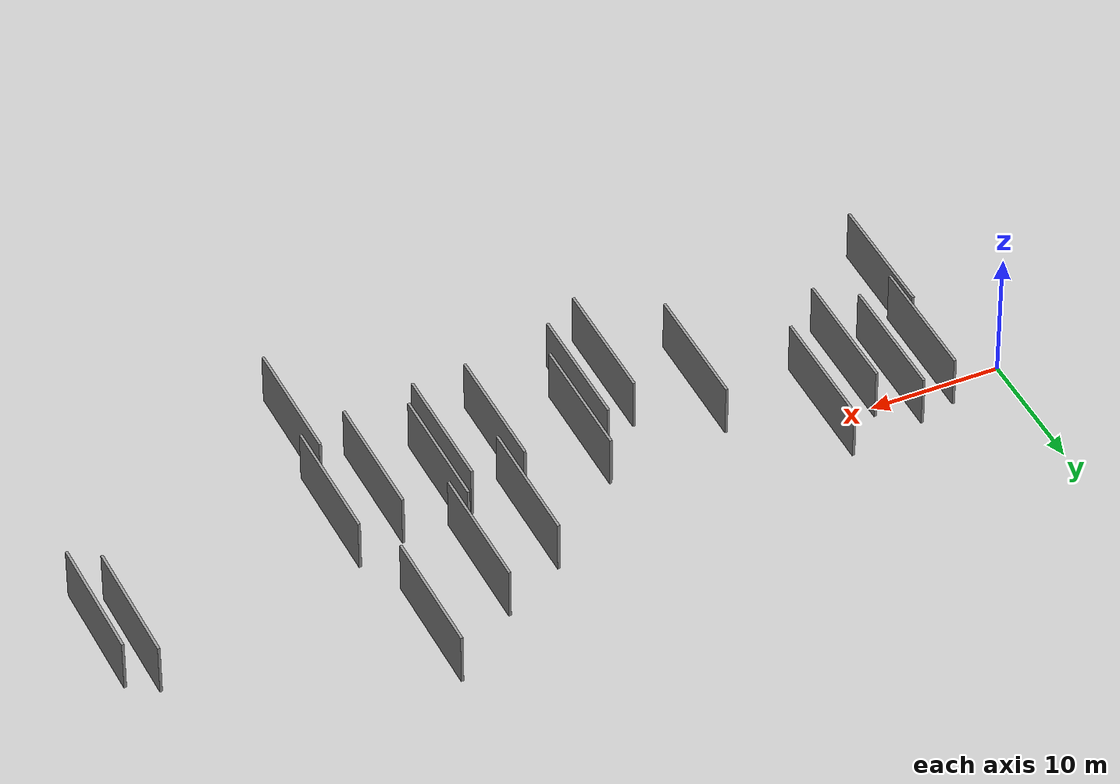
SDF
<sdf version="1.6">
 <world name="default">
  <scene>
   <sky><clouds><speed>12</speed></clouds></sky>
   <ambient>0.4 0.4 0.4 1</ambient>
   <background>0.7 0.7 0.7 1</background>
   <shadows>1</shadows>
  </scene>
  <gravity>0 0 -9.8066</gravity>
  <magnetic_field>6e-06 2.3e-05 -4.2e-05</magnetic_field>
  <physics default="0" name="default_physics" type="ode">
   <ode>
    <solver>
     <type>quick</type>
     <iters>10</iters>
     <sor>1.0</sor>
     <use_dynamic_moi_rescaling>0</use_dynamic_moi_rescaling>
    </solver>
    <constraints>
     <cfm>0</cfm>
     <erp>0.2</erp>
     <contact_max_correcting_vel>100</contact_max_correcting_vel>
     <contact_surface_layer>0.001</contact_surface_layer>
    </constraints>
   </ode>
   <max_step_size>0.004</max_step_size>
   <real_time_factor>1</real_time_factor>
   <real_time_update_rate>250</real_time_update_rate>
  </physics>
  <light name="sun" type="directional">
   <pose>0 0 10 0 0 0</pose>
   <diffuse>0.8 0.8 0.8 1</diffuse>
   <specular>0.2 0.2 0.2 1</specular>
   <attenuation>
    <range>1000</range>
    <constant>0.9</constant>
    <linear>0.01</linear>
    <quadratic>0.001</quadratic>
   </attenuation>
   <direction>-0.5 0.1 -0.9</direction>
  </light>
  <model name="grey_wall_1">
   <static>1</static>
   <pose>27.1731 -7.9387 2.5 0.000000 0.000000 1.570796</pose>
   <link name="link">
    <pose>0 0 2.00 0 0 0</pose>
    <collision name="collision"><geometry><box><size>10.00 0.2 4.00</size></box></geometry></collision>
    <visual name="visual">
     <cast_shadows>0</cast_shadows>
     <geometry><box><size>10.00 0.2 4.00</size></box></geometry>
     <material>
      <script>
       <uri>model://grey_wall/materials/scripts</uri>
       <uri>model://grey_wall/materials/textures</uri>
       <name>vrc/grey_wall</name>
      </script>
     </material>
    </visual>
   </link>
  </model>
  <model name="grey_wall_2">
   <static>1</static>
   <pose>46.5648 -3.8939 2.5 0.000000 0.000000 1.570796</pose>
   <link name="link">
    <pose>0 0 2.00 0 0 0</pose>
    <collision name="collision"><geometry><box><size>10.00 0.2 4.00</size></box></geometry></collision>
    <visual name="visual">
     <cast_shadows>0</cast_shadows>
     <geometry><box><size>10.00 0.2 4.00</size></box></geometry>
     <material>
      <script>
       <uri>model://grey_wall/materials/scripts</uri>
       <uri>model://grey_wall/materials/textures</uri>
       <name>vrc/grey_wall</name>
      </script>
     </material>
    </visual>
   </link>
  </model>
  <model name="grey_wall_3">
   <static>1</static>
   <pose>38.0335 2.9480 2.5 0.000000 0.000000 1.570796</pose>
   <link name="link">
    <pose>0 0 2.00 0 0 0</pose>
    <collision name="collision"><geometry><box><size>10.00 0.2 4.00</size></box></geometry></collision>
    <visual name="visual">
     <cast_shadows>0</cast_shadows>
     <geometry><box><size>10.00 0.2 4.00</size></box></geometry>
     <material>
      <script>
       <uri>model://grey_wall/materials/scripts</uri>
       <uri>model://grey_wall/materials/textures</uri>
       <name>vrc/grey_wall</name>
      </script>
     </material>
    </visual>
   </link>
  </model>
  <model name="grey_wall_4">
   <static>1</static>
   <pose>48.5227 10.1563 2.5 0.000000 0.000000 1.570796</pose>
   <link name="link">
    <pose>0 0 2.00 0 0 0</pose>
    <collision name="collision"><geometry><box><size>10.00 0.2 4.00</size></box></geometry></collision>
    <visual name="visual">
     <cast_shadows>0</cast_shadows>
     <geometry><box><size>10.00 0.2 4.00</size></box></geometry>
     <material>
      <script>
       <uri>model://grey_wall/materials/scripts</uri>
       <uri>model://grey_wall/materials/textures</uri>
       <name>vrc/grey_wall</name>
      </script>
     </material>
    </visual>
   </link>
  </model>
  <model name="grey_wall_5">
   <static>1</static>
   <pose>8.8101 0.2794 2.5 0.000000 0.000000 1.570796</pose>
   <link name="link">
    <pose>0 0 2.00 0 0 0</pose>
    <collision name="collision"><geometry><box><size>10.00 0.2 4.00</size></box></geometry></collision>
    <visual name="visual">
     <cast_shadows>0</cast_shadows>
     <geometry><box><size>10.00 0.2 4.00</size></box></geometry>
     <material>
      <script>
       <uri>model://grey_wall/materials/scripts</uri>
       <uri>model://grey_wall/materials/textures</uri>
       <name>vrc/grey_wall</name>
      </script>
     </material>
    </visual>
   </link>
  </model>
  <model name="grey_wall_6">
   <static>1</static>
   <pose>42.9810 5.7476 2.5 0.000000 0.000000 1.570796</pose>
   <link name="link">
    <pose>0 0 2.00 0 0 0</pose>
    <collision name="collision"><geometry><box><size>10.00 0.2 4.00</size></box></geometry></collision>
    <visual name="visual">
     <cast_shadows>0</cast_shadows>
     <geometry><box><size>10.00 0.2 4.00</size></box></geometry>
     <material>
      <script>
       <uri>model://grey_wall/materials/scripts</uri>
       <uri>model://grey_wall/materials/textures</uri>
       <name>vrc/grey_wall</name>
      </script>
     </material>
    </visual>
   </link>
  </model>
  <model name="grey_wall_7">
   <static>1</static>
   <pose>14.6772 1.2651 2.5 0.000000 0.000000 1.570796</pose>
   <link name="link">
    <pose>0 0 2.00 0 0 0</pose>
    <collision name="collision"><geometry><box><size>10.00 0.2 4.00</size></box></geometry></collision>
    <visual name="visual">
     <cast_shadows>0</cast_shadows>
     <geometry><box><size>10.00 0.2 4.00</size></box></geometry>
     <material>
      <script>
       <uri>model://grey_wall/materials/scripts</uri>
       <uri>model://grey_wall/materials/textures</uri>
       <name>vrc/grey_wall</name>
      </script>
     </material>
    </visual>
   </link>
  </model>
  <model name="grey_wall_8">
   <static>1</static>
   <pose>49.4049 -11.4374 2.5 0.000000 0.000000 1.570796</pose>
   <link name="link">
    <pose>0 0 2.00 0 0 0</pose>
    <collision name="collision"><geometry><box><size>10.00 0.2 4.00</size></box></geometry></collision>
    <visual name="visual">
     <cast_shadows>0</cast_shadows>
     <geometry><box><size>10.00 0.2 4.00</size></box></geometry>
     <material>
      <script>
       <uri>model://grey_wall/materials/scripts</uri>
       <uri>model://grey_wall/materials/textures</uri>
       <name>vrc/grey_wall</name>
      </script>
     </material>
    </visual>
   </link>
  </model>
  <model name="grey_wall_9">
   <static>1</static>
   <pose>50.2305 -2.9388 2.5 0.000000 0.000000 1.570796</pose>
   <link name="link">
    <pose>0 0 2.00 0 0 0</pose>
    <collision name="collision"><geometry><box><size>10.00 0.2 4.00</size></box></geometry></collision>
    <visual name="visual">
     <cast_shadows>0</cast_shadows>
     <geometry><box><size>10.00 0.2 4.00</size></box></geometry>
     <material>
      <script>
       <uri>model://grey_wall/materials/scripts</uri>
       <uri>model://grey_wall/materials/textures</uri>
       <name>vrc/grey_wall</name>
      </script>
     </material>
    </visual>
   </link>
  </model>
  <model name="grey_wall_10">
   <static>1</static>
   <pose>67.2007 2.5111 2.5 0.000000 0.000000 1.570796</pose>
   <link name="link">
    <pose>0 0 2.00 0 0 0</pose>
    <collision name="collision"><geometry><box><size>10.00 0.2 4.00</size></box></geometry></collision>
    <visual name="visual">
     <cast_shadows>0</cast_shadows>
     <geometry><box><size>10.00 0.2 4.00</size></box></geometry>
     <material>
      <script>
       <uri>model://grey_wall/materials/scripts</uri>
       <uri>model://grey_wall/materials/textures</uri>
       <name>vrc/grey_wall</name>
      </script>
     </material>
    </visual>
   </link>
  </model>
  <model name="grey_wall_11">
   <static>1</static>
   <pose>31.1586 -3.2877 2.5 0.000000 0.000000 1.570796</pose>
   <link name="link">
    <pose>0 0 2.00 0 0 0</pose>
    <collision name="collision"><geometry><box><size>10.00 0.2 4.00</size></box></geometry></collision>
    <visual name="visual">
     <cast_shadows>0</cast_shadows>
     <geometry><box><size>10.00 0.2 4.00</size></box></geometry>
     <material>
      <script>
       <uri>model://grey_wall/materials/scripts</uri>
       <uri>model://grey_wall/materials/textures</uri>
       <name>vrc/grey_wall</name>
      </script>
     </material>
    </visual>
   </link>
  </model>
  <model name="grey_wall_12">
   <static>1</static>
   <pose>5.5006 -7.8141 2.5 0.000000 0.000000 1.570796</pose>
   <link name="link">
    <pose>0 0 2.00 0 0 0</pose>
    <collision name="collision"><geometry><box><size>10.00 0.2 4.00</size></box></geometry></collision>
    <visual name="visual">
     <cast_shadows>0</cast_shadows>
     <geometry><box><size>10.00 0.2 4.00</size></box></geometry>
     <material>
      <script>
       <uri>model://grey_wall/materials/scripts</uri>
       <uri>model://grey_wall/materials/textures</uri>
       <name>vrc/grey_wall</name>
      </script>
     </material>
    </visual>
   </link>
  </model>
  <model name="grey_wall_13">
   <static>1</static>
   <pose>29.9609 -6.2413 2.5 0.000000 0.000000 1.570796</pose>
   <link name="link">
    <pose>0 0 2.00 0 0 0</pose>
    <collision name="collision"><geometry><box><size>10.00 0.2 4.00</size></box></geometry></collision>
    <visual name="visual">
     <cast_shadows>0</cast_shadows>
     <geometry><box><size>10.00 0.2 4.00</size></box></geometry>
     <material>
      <script>
       <uri>model://grey_wall/materials/scripts</uri>
       <uri>model://grey_wall/materials/textures</uri>
       <name>vrc/grey_wall</name>
      </script>
     </material>
    </visual>
   </link>
  </model>
  <model name="grey_wall_14">
   <static>1</static>
   <pose>11.4682 -1.7003 2.5 0.000000 0.000000 1.570796</pose>
   <link name="link">
    <pose>0 0 2.00 0 0 0</pose>
    <collision name="collision"><geometry><box><size>10.00 0.2 4.00</size></box></geometry></collision>
    <visual name="visual">
     <cast_shadows>0</cast_shadows>
     <geometry><box><size>10.00 0.2 4.00</size></box></geometry>
     <material>
      <script>
       <uri>model://grey_wall/materials/scripts</uri>
       <uri>model://grey_wall/materials/textures</uri>
       <name>vrc/grey_wall</name>
      </script>
     </material>
    </visual>
   </link>
  </model>
  <model name="grey_wall_15">
   <static>1</static>
   <pose>69.2274 1.1420 2.5 0.000000 0.000000 1.570796</pose>
   <link name="link">
    <pose>0 0 2.00 0 0 0</pose>
    <collision name="collision"><geometry><box><size>10.00 0.2 4.00</size></box></geometry></collision>
    <visual name="visual">
     <cast_shadows>0</cast_shadows>
     <geometry><box><size>10.00 0.2 4.00</size></box></geometry>
     <material>
      <script>
       <uri>model://grey_wall/materials/scripts</uri>
       <uri>model://grey_wall/materials/textures</uri>
       <name>vrc/grey_wall</name>
      </script>
     </material>
    </visual>
   </link>
  </model>
  <model name="grey_wall_16">
   <static>1</static>
   <pose>36.9852 -4.7885 2.5 0.000000 0.000000 1.570796</pose>
   <link name="link">
    <pose>0 0 2.00 0 0 0</pose>
    <collision name="collision"><geometry><box><size>10.00 0.2 4.00</size></box></geometry></collision>
    <visual name="visual">
     <cast_shadows>0</cast_shadows>
     <geometry><box><size>10.00 0.2 4.00</size></box></geometry>
     <material>
      <script>
       <uri>model://grey_wall/materials/scripts</uri>
       <uri>model://grey_wall/materials/textures</uri>
       <name>vrc/grey_wall</name>
      </script>
     </material>
    </visual>
   </link>
  </model>
  <model name="grey_wall_17">
   <static>1</static>
   <pose>41.1083 -4.5135 2.5 0.000000 0.000000 1.570796</pose>
   <link name="link">
    <pose>0 0 2.00 0 0 0</pose>
    <collision name="collision"><geometry><box><size>10.00 0.2 4.00</size></box></geometry></collision>
    <visual name="visual">
     <cast_shadows>0</cast_shadows>
     <geometry><box><size>10.00 0.2 4.00</size></box></geometry>
     <material>
      <script>
       <uri>model://grey_wall/materials/scripts</uri>
       <uri>model://grey_wall/materials/textures</uri>
       <name>vrc/grey_wall</name>
      </script>
     </material>
    </visual>
   </link>
  </model>
  <model name="grey_wall_18">
   <static>1</static>
   <pose>5.9199 -0.5898 2.5 0.000000 0.000000 1.570796</pose>
   <link name="link">
    <pose>0 0 2.00 0 0 0</pose>
    <collision name="collision"><geometry><box><size>10.00 0.2 4.00</size></box></geometry></collision>
    <visual name="visual">
     <cast_shadows>0</cast_shadows>
     <geometry><box><size>10.00 0.2 4.00</size></box></geometry>
     <material>
      <script>
       <uri>model://grey_wall/materials/scripts</uri>
       <uri>model://grey_wall/materials/textures</uri>
       <name>vrc/grey_wall</name>
      </script>
     </material>
    </visual>
   </link>
  </model>
  <model name="grey_wall_19">
   <static>1</static>
   <pose>42.1725 -2.7260 2.5 0.000000 0.000000 1.570796</pose>
   <link name="link">
    <pose>0 0 2.00 0 0 0</pose>
    <collision name="collision"><geometry><box><size>10.00 0.2 4.00</size></box></geometry></collision>
    <visual name="visual">
     <cast_shadows>0</cast_shadows>
     <geometry><box><size>10.00 0.2 4.00</size></box></geometry>
     <material>
      <script>
       <uri>model://grey_wall/materials/scripts</uri>
       <uri>model://grey_wall/materials/textures</uri>
       <name>vrc/grey_wall</name>
      </script>
     </material>
    </visual>
   </link>
  </model>
  <model name="grey_wall_20">
   <static>1</static>
   <pose>21.6402 -4.6185 2.5 0.000000 0.000000 1.570796</pose>
   <link name="link">
    <pose>0 0 2.00 0 0 0</pose>
    <collision name="collision"><geometry><box><size>10.00 0.2 4.00</size></box></geometry></collision>
    <visual name="visual">
     <cast_shadows>0</cast_shadows>
     <geometry><box><size>10.00 0.2 4.00</size></box></geometry>
     <material>
      <script>
       <uri>model://grey_wall/materials/scripts</uri>
       <uri>model://grey_wall/materials/textures</uri>
       <name>vrc/grey_wall</name>
      </script>
     </material>
    </visual>
   </link>
  </model>
 </world>
</sdf>
